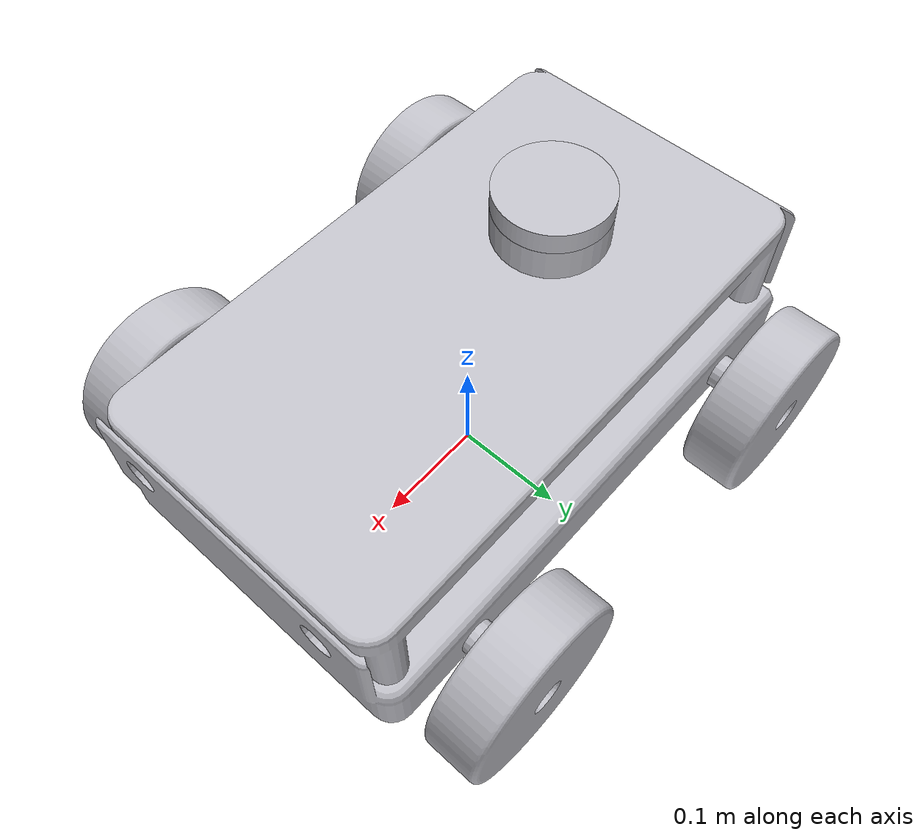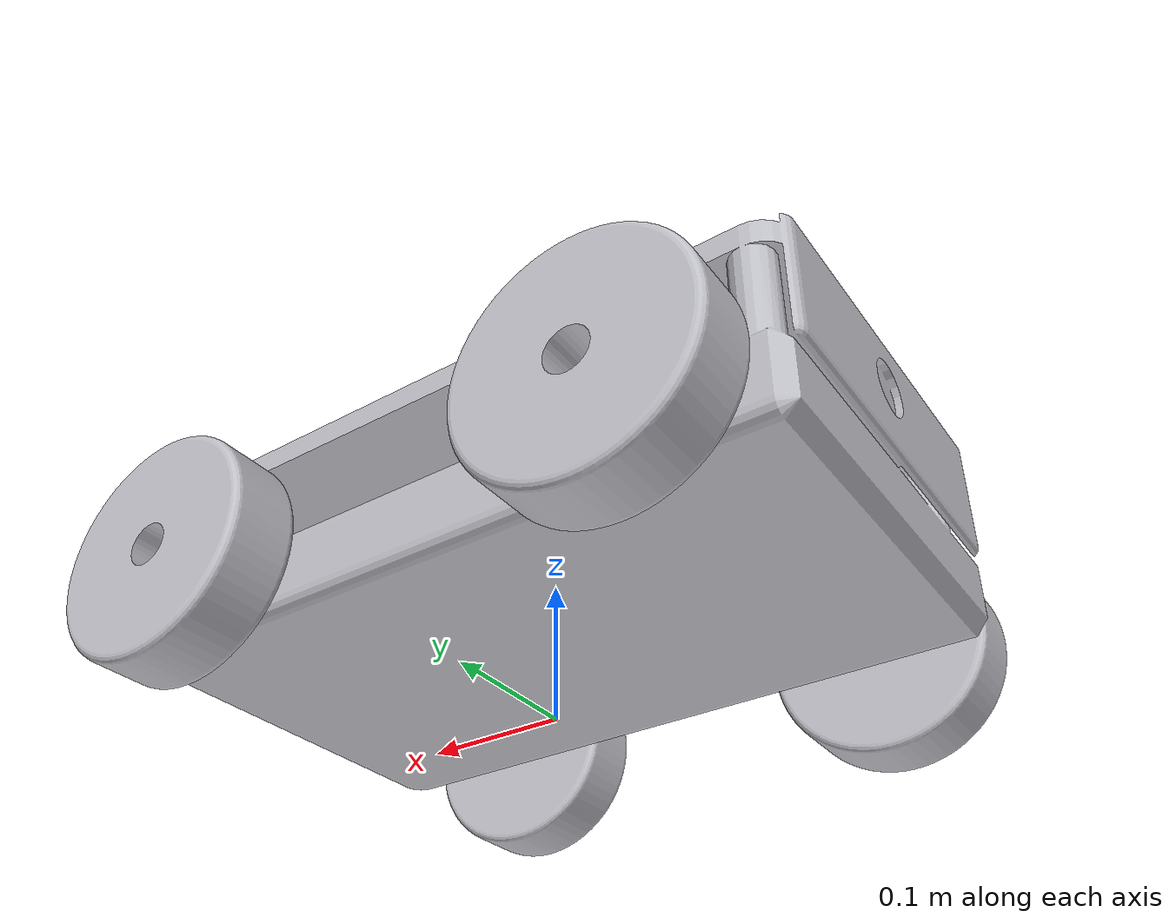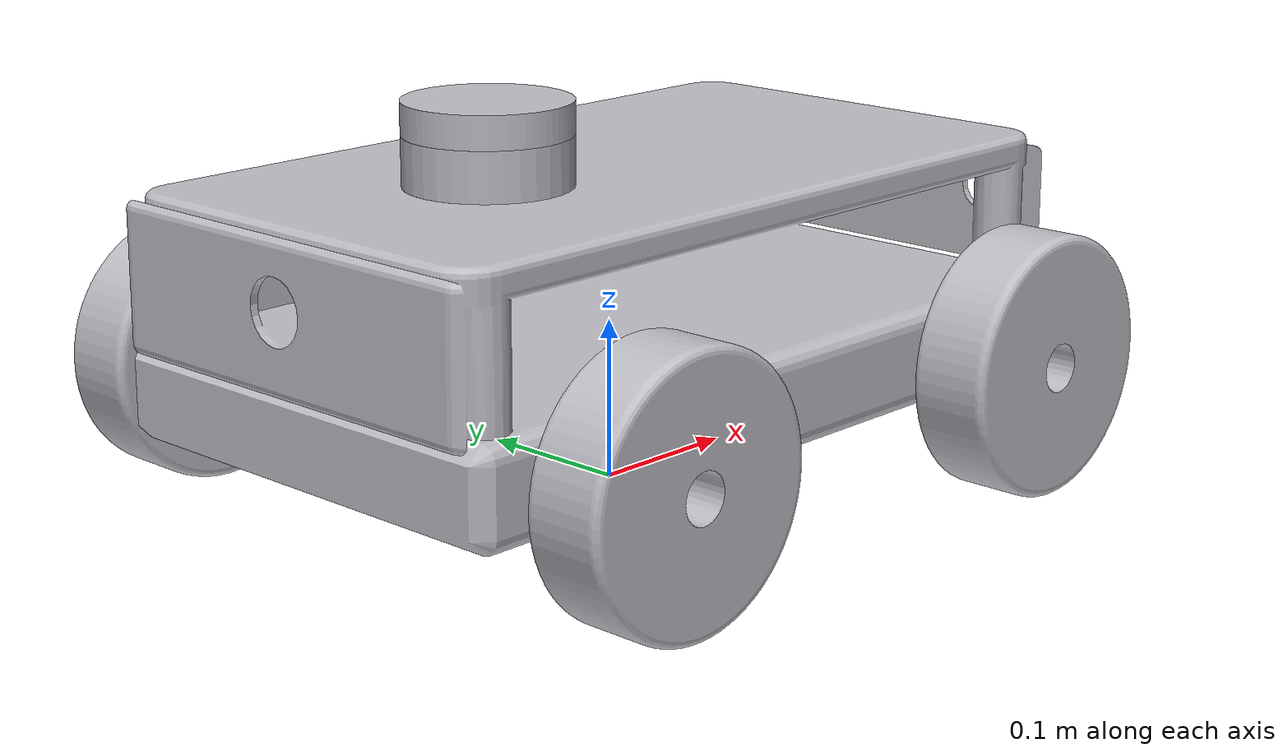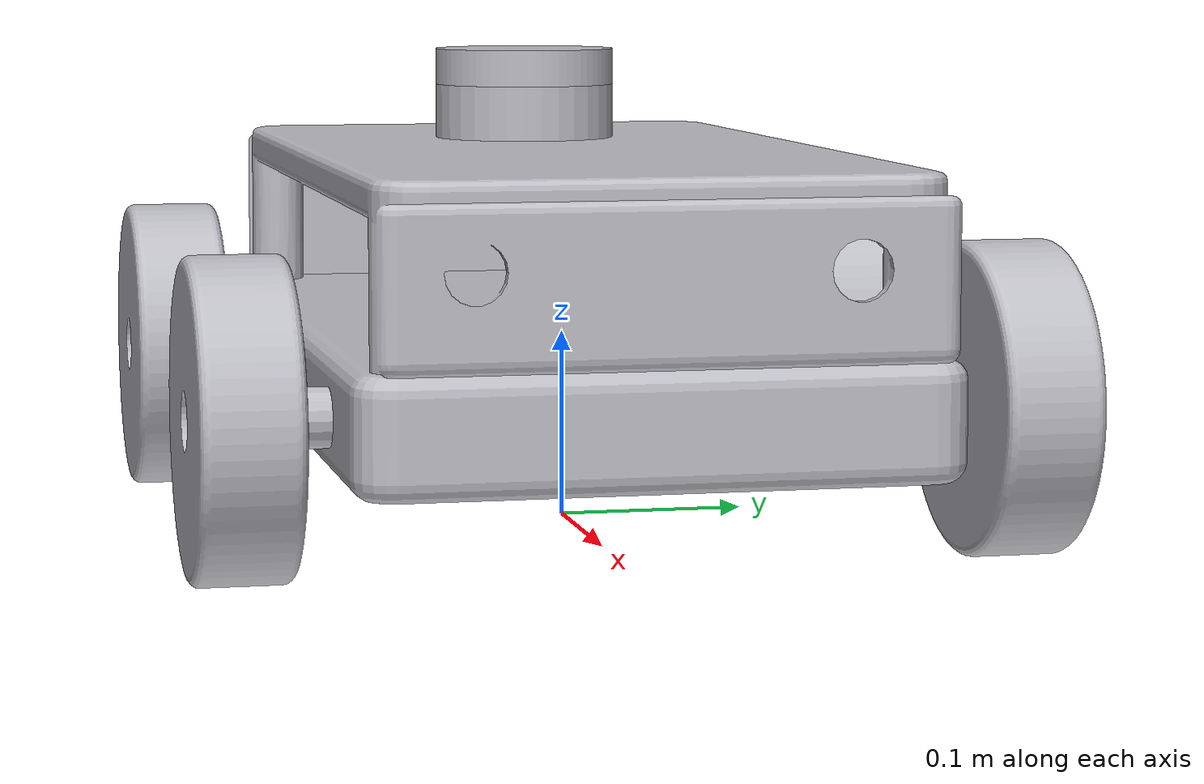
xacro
<?xml version="1.0" ?>
<robot name="rmp01_bot" xmlns:xacro="http://www.ros.org/wiki/xacro">

<xacro:include filename="$(find rmp01_bot_description)/urdf/materials.xacro" />
<xacro:include filename="$(find rmp01_bot_description)/urdf/rmp01_bot.trans" />
<xacro:include filename="$(find rmp01_bot_description)/urdf/rmp01_bot.gazebo" />
<link name="base_link">
  <inertial>
    <origin xyz="-0.0019676356467349648 2.5913164189297006e-05 0.1094887290414993" rpy="0 0 0"/>
    <mass value="13.125376337937691"/>
    <inertia ixx="0.12923" iyy="0.31802" izz="0.379479" ixy="-1.3e-05" iyz="-2.5e-05" ixz="0.002884"/>
  </inertial>
  <visual>
    <origin xyz="0 0 0" rpy="0 0 0"/>
    <geometry>
      <mesh filename="package://rmp01_bot_description/meshes/base_link.stl" scale="0.001 0.001 0.001"/>
    </geometry>
    <material name="silver"/>
  </visual>
  <collision>
    <origin xyz="0 0 0" rpy="0 0 0"/>
    <geometry>
      <mesh filename="package://rmp01_bot_description/meshes/base_link.stl" scale="0.001 0.001 0.001"/>
    </geometry>
  </collision>
</link>

<!-- camera link -->
<link name="camera_link"/>.

<link name="front_right_wheel_1">
  <inertial>
    <origin xyz="5.748179709996748e-14 -0.025000000000000022 1.3877787807814457e-17" rpy="0 0 0"/>
    <mass value="0.8971231010550951"/>
    <inertia ixx="0.001664" iyy="0.002957" izz="0.001664" ixy="-0.0" iyz="-0.0" ixz="0.0"/>
  </inertial>
  <visual>
    <origin xyz="-0.16 0.17 -0.08" rpy="0 0 0"/>
    <geometry>
      <mesh filename="package://rmp01_bot_description/meshes/front_right_wheel_1.stl" scale="0.001 0.001 0.001"/>
    </geometry>
    <material name="silver"/>
  </visual>
  <collision>
    <origin xyz="-0.16 0.17 -0.08" rpy="0 0 0"/>
    <geometry>
      <mesh filename="package://rmp01_bot_description/meshes/front_right_wheel_1.stl" scale="0.001 0.001 0.001"/>
    </geometry>
  </collision>
</link>

<link name="front_left_wheel_1">
  <inertial>
    <origin xyz="5.748179709996748e-14 0.025000000000000022 0.0" rpy="0 0 0"/>
    <mass value="0.8971231010550951"/>
    <inertia ixx="0.001664" iyy="0.002957" izz="0.001664" ixy="0.0" iyz="0.0" ixz="0.0"/>
  </inertial>
  <visual>
    <origin xyz="-0.16 -0.17 -0.08" rpy="0 0 0"/>
    <geometry>
      <mesh filename="package://rmp01_bot_description/meshes/front_left_wheel_1.stl" scale="0.001 0.001 0.001"/>
    </geometry>
    <material name="silver"/>
  </visual>
  <collision>
    <origin xyz="-0.16 -0.17 -0.08" rpy="0 0 0"/>
    <geometry>
      <mesh filename="package://rmp01_bot_description/meshes/front_left_wheel_1.stl" scale="0.001 0.001 0.001"/>
    </geometry>
  </collision>
</link>

<link name="back_right_wheel_1">
  <inertial>
    <origin xyz="-5.745404152435185e-14 -0.025000000000000022 0.0" rpy="0 0 0"/>
    <mass value="0.8971231010550951"/>
    <inertia ixx="0.001664" iyy="0.002957" izz="0.001664" ixy="0.0" iyz="0.0" ixz="-0.0"/>
  </inertial>
  <visual>
    <origin xyz="0.16 0.17 -0.08" rpy="0 0 0"/>
    <geometry>
      <mesh filename="package://rmp01_bot_description/meshes/back_right_wheel_1.stl" scale="0.001 0.001 0.001"/>
    </geometry>
    <material name="silver"/>
  </visual>
  <collision>
    <origin xyz="0.16 0.17 -0.08" rpy="0 0 0"/>
    <geometry>
      <mesh filename="package://rmp01_bot_description/meshes/back_right_wheel_1.stl" scale="0.001 0.001 0.001"/>
    </geometry>
  </collision>
</link>

<link name="back_left_wheel_1">
  <inertial>
    <origin xyz="-5.745404152435185e-14 0.025000000000000022 0.0" rpy="0 0 0"/>
    <mass value="0.8971231010550951"/>
    <inertia ixx="0.001664" iyy="0.002957" izz="0.001664" ixy="-0.0" iyz="0.0" ixz="-0.0"/>
  </inertial>
  <visual>
    <origin xyz="0.16 -0.17 -0.08" rpy="0 0 0"/>
    <geometry>
      <mesh filename="package://rmp01_bot_description/meshes/back_left_wheel_1.stl" scale="0.001 0.001 0.001"/>
    </geometry>
    <material name="silver"/>
  </visual>
  <collision>
    <origin xyz="0.16 -0.17 -0.08" rpy="0 0 0"/>
    <geometry>
      <mesh filename="package://rmp01_bot_description/meshes/back_left_wheel_1.stl" scale="0.001 0.001 0.001"/>
    </geometry>
  </collision>
</link>

<link name="lidar_1">
  <inertial>
    <origin xyz="2.7755575615628914e-17 -1.447505775030507e-17 0.009999999999999981" rpy="0 0 0"/>
    <mass value="1.2330751165339937"/>
    <inertia ixx="0.000812" iyy="0.000812" izz="0.001541" ixy="-0.0" iyz="-0.0" ixz="0.0"/>
  </inertial>
  <visual>
    <origin xyz="0.1 -0.0 -0.23" rpy="0 0 0"/>
    <geometry>
      <mesh filename="package://rmp01_bot_description/meshes/lidar_1.stl" scale="0.001 0.001 0.001"/>
    </geometry>
    <material name="silver"/>
  </visual>
  <collision>
    <origin xyz="0.1 -0.0 -0.23" rpy="0 0 0"/>
    <geometry>
      <mesh filename="package://rmp01_bot_description/meshes/lidar_1.stl" scale="0.001 0.001 0.001"/>
    </geometry>
  </collision>
</link>

<joint name="front_right_wheel_joint" type="continuous">
  <origin xyz="0.16 -0.17 0.08" rpy="0 0 0"/>
  <parent link="base_link"/>
  <child link="front_right_wheel_1"/>
  <axis xyz="0.0 1.0 0.0"/>
</joint>
<joint name= "camera_joint" type="fixed">
<origin xyz="0.1 0.0 0.23" rpy="0 0 0"/>
  <parent link="base_link"/>
  <child link="camera_link"/>
</joint>
<joint name="front_left_wheel_joint" type="continuous">
  <origin xyz="0.16 0.17 0.08" rpy="0 0 0"/>
  <parent link="base_link"/>
  <child link="front_left_wheel_1"/>
  <axis xyz="0.0 1.0 0.0"/>
</joint>

<joint name="back_right_wheel_joint" type="continuous">
  <origin xyz="-0.16 -0.17 0.08" rpy="0 0 0"/>
  <parent link="base_link"/>
  <child link="back_right_wheel_1"/>
  <axis xyz="0.0 1.0 0.0"/>
</joint>

<joint name="back_left_wheel_joint" type="continuous">
  <origin xyz="-0.16 0.17 0.08" rpy="0 0 0"/>
  <parent link="base_link"/>
  <child link="back_left_wheel_1"/>
  <axis xyz="0.0 1.0 0.0"/>
</joint>

<joint name="lidar_joint" type="fixed">
  <origin xyz="-0.1 0.0 0.23" rpy="0 0 0"/>
  <parent link="base_link"/>
  <child link="lidar_1"/>
</joint>

</robot>

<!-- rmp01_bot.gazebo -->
<robot name="rmp01_bot" xmlns:xacro="http://www.ros.org/wiki/xacro" >

<xacro:property name="body_color" value="Gazebo/Silver" />

<gazebo>
  <plugin name="control" filename="libgazebo_ros_control.so"/>
</gazebo>
<gazebo reference="base_link">
  <material>${body_color}</material>
  <mu1>0.2</mu1>
  <mu2>0.2</mu2>
  <selfCollide>true</selfCollide>
  <gravity>true</gravity>
</gazebo>

<gazebo reference="front_right_wheel_1">
  <material>${body_color}</material>
  <mu1>0.2</mu1>
  <mu2>0.2</mu2>
  <selfCollide>true</selfCollide>
</gazebo>

<gazebo reference="front_left_wheel_1">
  <material>${body_color}</material>
  <mu1>0.2</mu1>
  <mu2>0.2</mu2>
  <selfCollide>true</selfCollide>
</gazebo>

<gazebo reference="back_right_wheel_1">
  <material>${body_color}</material>
  <mu1>0.2</mu1>
  <mu2>0.2</mu2>
  <selfCollide>true</selfCollide>
</gazebo>

<gazebo reference="back_left_wheel_1">
  <material>${body_color}</material>
  <mu1>0.2</mu1>
  <mu2>0.2</mu2>
  <selfCollide>true</selfCollide>
</gazebo>

<gazebo reference="lidar_1">
  <material>${body_color}</material>
  <mu1>0.2</mu1>
  <mu2>0.2</mu2>
  <selfCollide>true</selfCollide>
</gazebo>
<gazebo reference="lidar_1">
    <sensor type="ray" name="head_hokuyo_sensor">
      <pose>0 0 0 0 0 0</pose>
      <visualize>false</visualize>
      <update_rate>10</update_rate>
      <ray>
        <scan>
          <horizontal>
            <samples>720</samples>
            <resolution>1</resolution>
            <min_angle>-3.14</min_angle>
            <max_angle>3.14</max_angle>
          </horizontal>
        </scan>
        <range>
          <min>0.10</min>
          <max>30.0</max>
          <resolution>0.01</resolution>
        </range>
        <noise>
          <type>gaussian</type>
          <mean>0.0</mean>
          <stddev>0.01</stddev>
        </noise>
      </ray>
      <plugin name="gazebo_ros_head_hokuyo_controller" filename="libgazebo_ros_laser.so">
        <topicName>/scan</topicName>
        <frameName>lidar_1</frameName>
      </plugin>
    </sensor>
  </gazebo>

<!-- camera -->
  <gazebo reference="camera_link">
    <sensor type="camera" name="camera1">
      <update_rate>30.0</update_rate>
      <camera name="head">
        <horizontal_fov>1.3962634</horizontal_fov>
        <image>
          <width>800</width>
          <height>800</height>
          <format>R8G8B8</format>
        </image>
        <clip>
          <near>0.02</near>
          <far>300</far>
        </clip>
        <noise>
          <type>gaussian</type>
          <!-- Noise is sampled independently per pixel on each frame.
               That pixel's noise value is added to each of its color
               channels, which at that point lie in the range [0,1]. -->
          <mean>0.0</mean>
          <stddev>0.007</stddev>
        </noise>
      </camera>
      <plugin name="camera_controller" filename="libgazebo_ros_camera.so">
        <alwaysOn>true</alwaysOn>
        <updateRate>0.0</updateRate>
        <cameraName>camera1</cameraName>
        <imageTopicName>image_raw</imageTopicName>
        <cameraInfoTopicName>camera_info</cameraInfoTopicName>
        <frameName>camera_link</frameName>
        <hackBaseline>0.07</hackBaseline>
        <distortionK1>0.0</distortionK1>
        <distortionK2>0.0</distortionK2>
        <distortionK3>0.0</distortionK3>
        <distortionT1>0.0</distortionT1>
        <distortionT2>0.0</distortionT2>
      </plugin>
    </sensor>
  </gazebo>
  <gazebo>
  <plugin name="skid_steer_drive_controller" filename="libgazebo_ros_skid_steer_drive.so">
    <updateRate>100.0</updateRate>
    <robotNamespace>/</robotNamespace>
    <leftFrontJoint>front_left_wheel_joint</leftFrontJoint>
    <rightFrontJoint>front_right_wheel_joint</rightFrontJoint>
    <leftRearJoint>back_left_wheel_joint</leftRearJoint>
    <rightRearJoint>back_right_wheel_joint</rightRearJoint>
    <wheelSeparation>0.39</wheelSeparation>
    <wheelDiameter>0.15</wheelDiameter>
    <robotBaseFrame>base_link</robotBaseFrame>
    <torque>20</torque>
    <topicName>cmd_vel</topicName>
    <broadcastTF>true</broadcastTF>
    <publishWheelJointState>true</publishWheelJointState>
    <publishOdom>true</publishOdom>
    <commandTopic>cmd_vel</commandTopic>
    <odometryFrame>odom</odometryFrame>
    <odometryTopic>odom</odometryTopic>
  </plugin>
</gazebo>
</robot>
